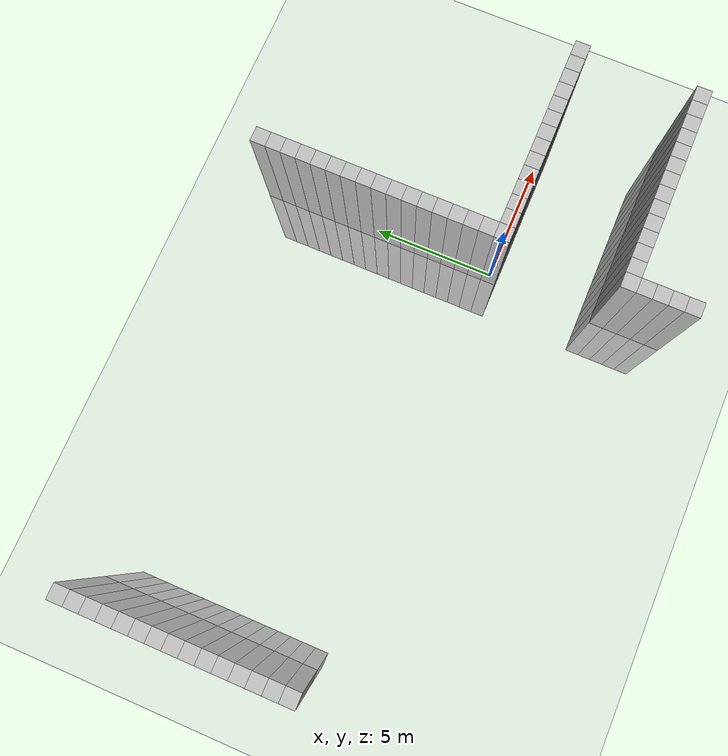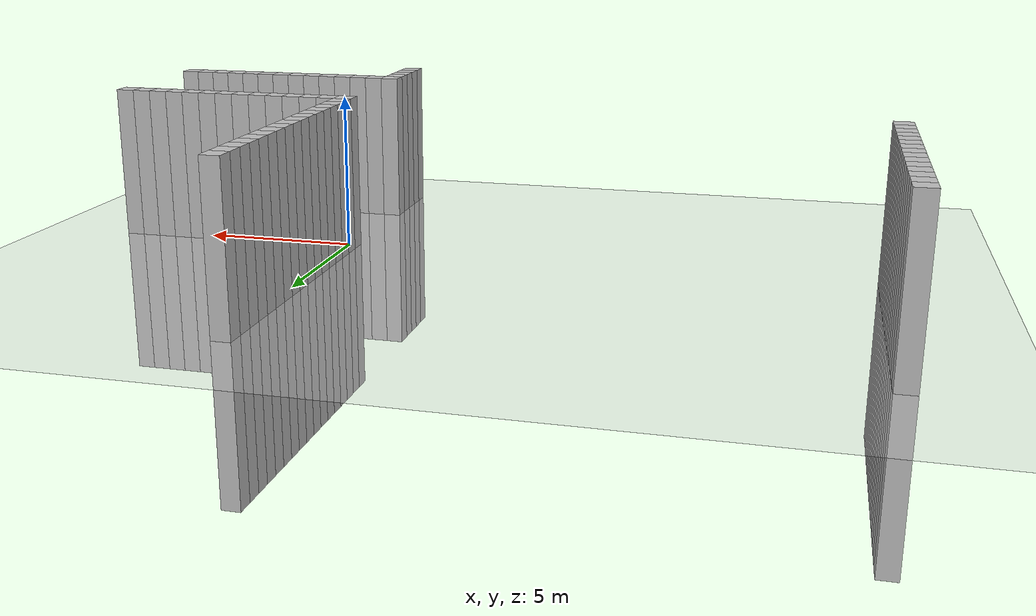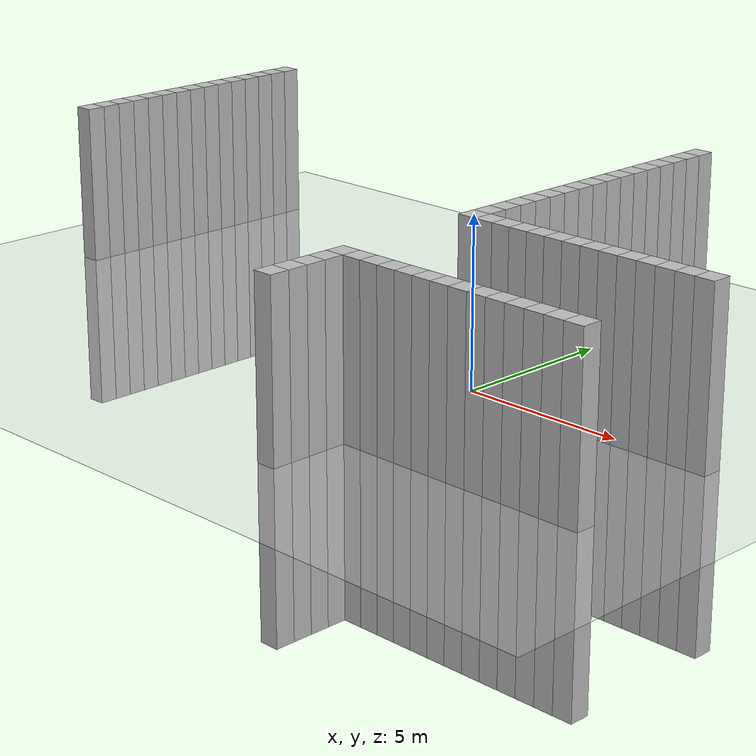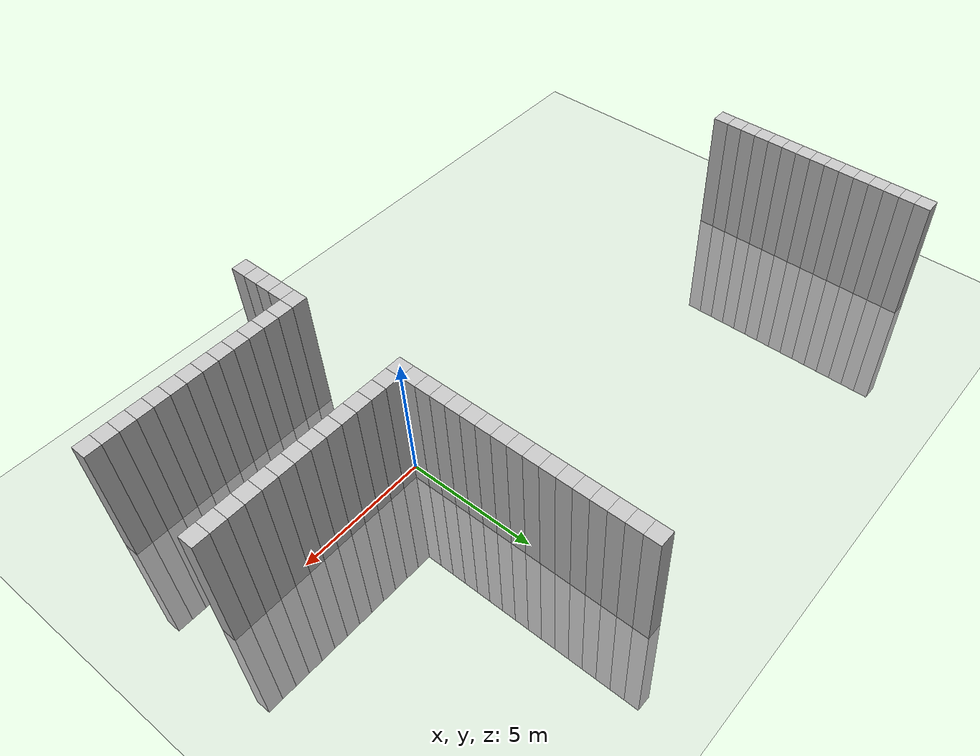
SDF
<sdf version="1.6">
 <world name="default">
  <model name="ground_plane">
   <static>1</static>
   <link name="link">
    <collision name="collision">
     <geometry><plane><normal>0 0 1</normal><size>100 100</size></plane></geometry>
     <surface><friction><ode><mu>100</mu><mu2>50</mu2></ode></friction></surface>
    </collision>
    <visual name="visual">
     <cast_shadows>0</cast_shadows>
     <geometry><plane><normal>0 0 1</normal><size>100 100</size></plane></geometry>
     <material>
      <script><uri>file://media/materials/scripts/gazebo.material</uri><name>Gazebo/Grey</name></script>
     </material>
    </visual>
   </link>
  </model>
  <model name="unit_cylinder_0">
   <static>1</static>
   <link name="link">
    <inertial>
     <mass>1</mass>
     <inertia><ixx>0.145833</ixx><ixy>0</ixy><ixz>0</ixz><iyy>0.145833</iyy><iyz>0</iyz><izz>0.125</izz></inertia>
    </inertial>
    <collision name="collision"><geometry><box><size>0.6 0.6 10</size></box></geometry></collision>
    <visual name="visual">
     <geometry><box><size>0.6 0.6 10</size></box></geometry>
     <material><ambient>0.753 0.753 0.753 1</ambient><diffuse>0.753 0.753 0.753 1</diffuse></material>
     <material>
      <script><name>Gazebo/Grey</name><uri>file://media/materials/scripts/gazebo.material</uri></script>
     </material>
    </visual>
   </link>
  </model>
  <model name="unit_cylinder_1">
   <static>1</static>
   <pose>0 0.6 0 0 -0 0</pose>
   <link name="link">
    <inertial>
     <mass>1</mass>
     <inertia><ixx>0.145833</ixx><ixy>0</ixy><ixz>0</ixz><iyy>0.145833</iyy><iyz>0</iyz><izz>0.125</izz></inertia>
    </inertial>
    <collision name="collision"><geometry><box><size>0.6 0.6 10</size></box></geometry></collision>
    <visual name="visual">
     <geometry><box><size>0.6 0.6 10</size></box></geometry>
     <material><ambient>0.753 0.753 0.753 1</ambient><diffuse>0.753 0.753 0.753 1</diffuse></material>
     <material>
      <script><name>Gazebo/Grey</name><uri>file://media/materials/scripts/gazebo.material</uri></script>
     </material>
    </visual>
   </link>
  </model>
  <model name="unit_cylinder_2">
   <static>1</static>
   <pose>0 1.2 0 0 -0 0</pose>
   <link name="link">
    <inertial>
     <mass>1</mass>
     <inertia><ixx>0.145833</ixx><ixy>0</ixy><ixz>0</ixz><iyy>0.145833</iyy><iyz>0</iyz><izz>0.125</izz></inertia>
    </inertial>
    <collision name="collision"><geometry><box><size>0.6 0.6 10</size></box></geometry></collision>
    <visual name="visual">
     <geometry><box><size>0.6 0.6 10</size></box></geometry>
     <material><ambient>0.753 0.753 0.753 1</ambient><diffuse>0.753 0.753 0.753 1</diffuse></material>
     <material>
      <script><name>Gazebo/Grey</name><uri>file://media/materials/scripts/gazebo.material</uri></script>
     </material>
    </visual>
   </link>
  </model>
  <model name="unit_cylinder_3">
   <static>1</static>
   <pose>0 1.8 0 0 -0 0</pose>
   <link name="link">
    <inertial>
     <mass>1</mass>
     <inertia><ixx>0.145833</ixx><ixy>0</ixy><ixz>0</ixz><iyy>0.145833</iyy><iyz>0</iyz><izz>0.125</izz></inertia>
    </inertial>
    <collision name="collision"><geometry><box><size>0.6 0.6 10</size></box></geometry></collision>
    <visual name="visual">
     <geometry><box><size>0.6 0.6 10</size></box></geometry>
     <material><ambient>0.753 0.753 0.753 1</ambient><diffuse>0.753 0.753 0.753 1</diffuse></material>
     <material>
      <script><name>Gazebo/Grey</name><uri>file://media/materials/scripts/gazebo.material</uri></script>
     </material>
    </visual>
   </link>
  </model>
  <model name="unit_cylinder_4">
   <static>1</static>
   <pose>0 2.4 0 0 -0 0</pose>
   <link name="link">
    <inertial>
     <mass>1</mass>
     <inertia><ixx>0.145833</ixx><ixy>0</ixy><ixz>0</ixz><iyy>0.145833</iyy><iyz>0</iyz><izz>0.125</izz></inertia>
    </inertial>
    <collision name="collision"><geometry><box><size>0.6 0.6 10</size></box></geometry></collision>
    <visual name="visual">
     <geometry><box><size>0.6 0.6 10</size></box></geometry>
     <material><ambient>0.753 0.753 0.753 1</ambient><diffuse>0.753 0.753 0.753 1</diffuse></material>
     <material>
      <script><name>Gazebo/Grey</name><uri>file://media/materials/scripts/gazebo.material</uri></script>
     </material>
    </visual>
   </link>
  </model>
  <model name="unit_cylinder_5">
   <static>1</static>
   <pose>0 3 0 0 -0 0</pose>
   <link name="link">
    <inertial>
     <mass>1</mass>
     <inertia><ixx>0.145833</ixx><ixy>0</ixy><ixz>0</ixz><iyy>0.145833</iyy><iyz>0</iyz><izz>0.125</izz></inertia>
    </inertial>
    <collision name="collision"><geometry><box><size>0.6 0.6 10</size></box></geometry></collision>
    <visual name="visual">
     <geometry><box><size>0.6 0.6 10</size></box></geometry>
     <material><ambient>0.753 0.753 0.753 1</ambient><diffuse>0.753 0.753 0.753 1</diffuse></material>
     <material>
      <script><name>Gazebo/Grey</name><uri>file://media/materials/scripts/gazebo.material</uri></script>
     </material>
    </visual>
   </link>
  </model>
  <model name="unit_cylinder_6">
   <static>1</static>
   <pose>0 3.6 0 0 -0 0</pose>
   <link name="link">
    <inertial>
     <mass>1</mass>
     <inertia><ixx>0.145833</ixx><ixy>0</ixy><ixz>0</ixz><iyy>0.145833</iyy><iyz>0</iyz><izz>0.125</izz></inertia>
    </inertial>
    <collision name="collision"><geometry><box><size>0.6 0.6 10</size></box></geometry></collision>
    <visual name="visual">
     <geometry><box><size>0.6 0.6 10</size></box></geometry>
     <material><ambient>0.753 0.753 0.753 1</ambient><diffuse>0.753 0.753 0.753 1</diffuse></material>
     <material>
      <script><name>Gazebo/Grey</name><uri>file://media/materials/scripts/gazebo.material</uri></script>
     </material>
    </visual>
   </link>
  </model>
  <model name="unit_cylinder_7">
   <static>1</static>
   <pose>0 4.2 0 0 -0 0</pose>
   <link name="link">
    <inertial>
     <mass>1</mass>
     <inertia><ixx>0.145833</ixx><ixy>0</ixy><ixz>0</ixz><iyy>0.145833</iyy><iyz>0</iyz><izz>0.125</izz></inertia>
    </inertial>
    <collision name="collision"><geometry><box><size>0.6 0.6 10</size></box></geometry></collision>
    <visual name="visual">
     <geometry><box><size>0.6 0.6 10</size></box></geometry>
     <material><ambient>0.753 0.753 0.753 1</ambient><diffuse>0.753 0.753 0.753 1</diffuse></material>
     <material>
      <script><name>Gazebo/Grey</name><uri>file://media/materials/scripts/gazebo.material</uri></script>
     </material>
    </visual>
   </link>
  </model>
  <model name="unit_cylinder_8">
   <static>1</static>
   <pose>0 4.8 0 0 -0 0</pose>
   <link name="link">
    <inertial>
     <mass>1</mass>
     <inertia><ixx>0.145833</ixx><ixy>0</ixy><ixz>0</ixz><iyy>0.145833</iyy><iyz>0</iyz><izz>0.125</izz></inertia>
    </inertial>
    <collision name="collision"><geometry><box><size>0.6 0.6 10</size></box></geometry></collision>
    <visual name="visual">
     <geometry><box><size>0.6 0.6 10</size></box></geometry>
     <material><ambient>0.753 0.753 0.753 1</ambient><diffuse>0.753 0.753 0.753 1</diffuse></material>
     <material>
      <script><name>Gazebo/Grey</name><uri>file://media/materials/scripts/gazebo.material</uri></script>
     </material>
    </visual>
   </link>
  </model>
  <model name="unit_cylinder_9">
   <static>1</static>
   <pose>0 5.4 0 0 -0 0</pose>
   <link name="link">
    <inertial>
     <mass>1</mass>
     <inertia><ixx>0.145833</ixx><ixy>0</ixy><ixz>0</ixz><iyy>0.145833</iyy><iyz>0</iyz><izz>0.125</izz></inertia>
    </inertial>
    <collision name="collision"><geometry><box><size>0.6 0.6 10</size></box></geometry></collision>
    <visual name="visual">
     <geometry><box><size>0.6 0.6 10</size></box></geometry>
     <material><ambient>0.753 0.753 0.753 1</ambient><diffuse>0.753 0.753 0.753 1</diffuse></material>
     <material>
      <script><name>Gazebo/Grey</name><uri>file://media/materials/scripts/gazebo.material</uri></script>
     </material>
    </visual>
   </link>
  </model>
  <model name="unit_cylinder_10">
   <static>1</static>
   <pose>0 6 0 0 -0 0</pose>
   <link name="link">
    <inertial>
     <mass>1</mass>
     <inertia><ixx>0.145833</ixx><ixy>0</ixy><ixz>0</ixz><iyy>0.145833</iyy><iyz>0</iyz><izz>0.125</izz></inertia>
    </inertial>
    <collision name="collision"><geometry><box><size>0.6 0.6 10</size></box></geometry></collision>
    <visual name="visual">
     <geometry><box><size>0.6 0.6 10</size></box></geometry>
     <material><ambient>0.753 0.753 0.753 1</ambient><diffuse>0.753 0.753 0.753 1</diffuse></material>
     <material>
      <script><name>Gazebo/Grey</name><uri>file://media/materials/scripts/gazebo.material</uri></script>
     </material>
    </visual>
   </link>
  </model>
  <model name="unit_cylinder_11">
   <static>1</static>
   <pose>0 6.6 0 0 -0 0</pose>
   <link name="link">
    <inertial>
     <mass>1</mass>
     <inertia><ixx>0.145833</ixx><ixy>0</ixy><ixz>0</ixz><iyy>0.145833</iyy><iyz>0</iyz><izz>0.125</izz></inertia>
    </inertial>
    <collision name="collision"><geometry><box><size>0.6 0.6 10</size></box></geometry></collision>
    <visual name="visual">
     <geometry><box><size>0.6 0.6 10</size></box></geometry>
     <material><ambient>0.753 0.753 0.753 1</ambient><diffuse>0.753 0.753 0.753 1</diffuse></material>
     <material>
      <script><name>Gazebo/Grey</name><uri>file://media/materials/scripts/gazebo.material</uri></script>
     </material>
    </visual>
   </link>
  </model>
  <model name="unit_cylinder_12">
   <static>1</static>
   <pose>0 7.2 0 0 -0 0</pose>
   <link name="link">
    <inertial>
     <mass>1</mass>
     <inertia><ixx>0.145833</ixx><ixy>0</ixy><ixz>0</ixz><iyy>0.145833</iyy><iyz>0</iyz><izz>0.125</izz></inertia>
    </inertial>
    <collision name="collision"><geometry><box><size>0.6 0.6 10</size></box></geometry></collision>
    <visual name="visual">
     <geometry><box><size>0.6 0.6 10</size></box></geometry>
     <material><ambient>0.753 0.753 0.753 1</ambient><diffuse>0.753 0.753 0.753 1</diffuse></material>
     <material>
      <script><name>Gazebo/Grey</name><uri>file://media/materials/scripts/gazebo.material</uri></script>
     </material>
    </visual>
   </link>
  </model>
  <model name="unit_cylinder_13">
   <static>1</static>
   <pose>0 7.8 0 0 -0 0</pose>
   <link name="link">
    <inertial>
     <mass>1</mass>
     <inertia><ixx>0.145833</ixx><ixy>0</ixy><ixz>0</ixz><iyy>0.145833</iyy><iyz>0</iyz><izz>0.125</izz></inertia>
    </inertial>
    <collision name="collision"><geometry><box><size>0.6 0.6 10</size></box></geometry></collision>
    <visual name="visual">
     <geometry><box><size>0.6 0.6 10</size></box></geometry>
     <material><ambient>0.753 0.753 0.753 1</ambient><diffuse>0.753 0.753 0.753 1</diffuse></material>
     <material>
      <script><name>Gazebo/Grey</name><uri>file://media/materials/scripts/gazebo.material</uri></script>
     </material>
    </visual>
   </link>
  </model>
  <model name="unit_cylinder_14">
   <static>1</static>
   <pose>0 8.4 0 0 -0 0</pose>
   <link name="link">
    <inertial>
     <mass>1</mass>
     <inertia><ixx>0.145833</ixx><ixy>0</ixy><ixz>0</ixz><iyy>0.145833</iyy><iyz>0</iyz><izz>0.125</izz></inertia>
    </inertial>
    <collision name="collision"><geometry><box><size>0.6 0.6 10</size></box></geometry></collision>
    <visual name="visual">
     <geometry><box><size>0.6 0.6 10</size></box></geometry>
     <material><ambient>0.753 0.753 0.753 1</ambient><diffuse>0.753 0.753 0.753 1</diffuse></material>
     <material>
      <script><name>Gazebo/Grey</name><uri>file://media/materials/scripts/gazebo.material</uri></script>
     </material>
    </visual>
   </link>
  </model>
  <model name="unit_cylinder_15">
   <static>1</static>
   <pose>0 9 0 0 -0 0</pose>
   <link name="link">
    <inertial>
     <mass>1</mass>
     <inertia><ixx>0.145833</ixx><ixy>0</ixy><ixz>0</ixz><iyy>0.145833</iyy><iyz>0</iyz><izz>0.125</izz></inertia>
    </inertial>
    <collision name="collision"><geometry><box><size>0.6 0.6 10</size></box></geometry></collision>
    <visual name="visual">
     <geometry><box><size>0.6 0.6 10</size></box></geometry>
     <material><ambient>0.753 0.753 0.753 1</ambient><diffuse>0.753 0.753 0.753 1</diffuse></material>
     <material>
      <script><name>Gazebo/Grey</name><uri>file://media/materials/scripts/gazebo.material</uri></script>
     </material>
    </visual>
   </link>
  </model>
  <model name="unit_cylinder_16">
   <static>1</static>
   <pose>0 9.6 0 0 -0 0</pose>
   <link name="link">
    <inertial>
     <mass>1</mass>
     <inertia><ixx>0.145833</ixx><ixy>0</ixy><ixz>0</ixz><iyy>0.145833</iyy><iyz>0</iyz><izz>0.125</izz></inertia>
    </inertial>
    <collision name="collision"><geometry><box><size>0.6 0.6 10</size></box></geometry></collision>
    <visual name="visual">
     <geometry><box><size>0.6 0.6 10</size></box></geometry>
     <material><ambient>0.753 0.753 0.753 1</ambient><diffuse>0.753 0.753 0.753 1</diffuse></material>
     <material>
      <script><name>Gazebo/Grey</name><uri>file://media/materials/scripts/gazebo.material</uri></script>
     </material>
    </visual>
   </link>
  </model>
  <model name="unit_cylinder_43">
   <static>1</static>
   <pose>0.6 0 0 0 -0 0</pose>
   <link name="link">
    <inertial>
     <mass>1</mass>
     <inertia><ixx>0.145833</ixx><ixy>0</ixy><ixz>0</ixz><iyy>0.145833</iyy><iyz>0</iyz><izz>0.125</izz></inertia>
    </inertial>
    <collision name="collision"><geometry><box><size>0.6 0.6 10</size></box></geometry></collision>
    <visual name="visual">
     <geometry><box><size>0.6 0.6 10</size></box></geometry>
     <material><ambient>0.753 0.753 0.753 1</ambient><diffuse>0.753 0.753 0.753 1</diffuse></material>
     <material>
      <script><name>Gazebo/Grey</name><uri>file://media/materials/scripts/gazebo.material</uri></script>
     </material>
    </visual>
   </link>
  </model>
  <model name="unit_cylinder_46">
   <static>1</static>
   <pose>1.2 0 0 0 -0 0</pose>
   <link name="link">
    <inertial>
     <mass>1</mass>
     <inertia><ixx>0.145833</ixx><ixy>0</ixy><ixz>0</ixz><iyy>0.145833</iyy><iyz>0</iyz><izz>0.125</izz></inertia>
    </inertial>
    <collision name="collision"><geometry><box><size>0.6 0.6 10</size></box></geometry></collision>
    <visual name="visual">
     <geometry><box><size>0.6 0.6 10</size></box></geometry>
     <material><ambient>0.753 0.753 0.753 1</ambient><diffuse>0.753 0.753 0.753 1</diffuse></material>
     <material>
      <script><name>Gazebo/Grey</name><uri>file://media/materials/scripts/gazebo.material</uri></script>
     </material>
    </visual>
   </link>
  </model>
  <model name="unit_cylinder_49">
   <static>1</static>
   <pose>1.8 0 0 0 -0 0</pose>
   <link name="link">
    <inertial>
     <mass>1</mass>
     <inertia><ixx>0.145833</ixx><ixy>0</ixy><ixz>0</ixz><iyy>0.145833</iyy><iyz>0</iyz><izz>0.125</izz></inertia>
    </inertial>
    <collision name="collision"><geometry><box><size>0.6 0.6 10</size></box></geometry></collision>
    <visual name="visual">
     <geometry><box><size>0.6 0.6 10</size></box></geometry>
     <material><ambient>0.753 0.753 0.753 1</ambient><diffuse>0.753 0.753 0.753 1</diffuse></material>
     <material>
      <script><name>Gazebo/Grey</name><uri>file://media/materials/scripts/gazebo.material</uri></script>
     </material>
    </visual>
   </link>
  </model>
  <model name="unit_cylinder_52">
   <static>1</static>
   <pose>2.4 0 0 0 -0 0</pose>
   <link name="link">
    <inertial>
     <mass>1</mass>
     <inertia><ixx>0.145833</ixx><ixy>0</ixy><ixz>0</ixz><iyy>0.145833</iyy><iyz>0</iyz><izz>0.125</izz></inertia>
    </inertial>
    <collision name="collision"><geometry><box><size>0.6 0.6 10</size></box></geometry></collision>
    <visual name="visual">
     <geometry><box><size>0.6 0.6 10</size></box></geometry>
     <material><ambient>0.753 0.753 0.753 1</ambient><diffuse>0.753 0.753 0.753 1</diffuse></material>
     <material>
      <script><name>Gazebo/Grey</name><uri>file://media/materials/scripts/gazebo.material</uri></script>
     </material>
    </visual>
   </link>
  </model>
  <model name="unit_cylinder_55">
   <static>1</static>
   <pose>3 0 0 0 -0 0</pose>
   <link name="link">
    <inertial>
     <mass>1</mass>
     <inertia><ixx>0.145833</ixx><ixy>0</ixy><ixz>0</ixz><iyy>0.145833</iyy><iyz>0</iyz><izz>0.125</izz></inertia>
    </inertial>
    <collision name="collision"><geometry><box><size>0.6 0.6 10</size></box></geometry></collision>
    <visual name="visual">
     <geometry><box><size>0.6 0.6 10</size></box></geometry>
     <material><ambient>0.753 0.753 0.753 1</ambient><diffuse>0.753 0.753 0.753 1</diffuse></material>
     <material>
      <script><name>Gazebo/Grey</name><uri>file://media/materials/scripts/gazebo.material</uri></script>
     </material>
    </visual>
   </link>
  </model>
  <model name="unit_cylinder_58">
   <static>1</static>
   <pose>3.6 0 0 0 -0 0</pose>
   <link name="link">
    <inertial>
     <mass>1</mass>
     <inertia><ixx>0.145833</ixx><ixy>0</ixy><ixz>0</ixz><iyy>0.145833</iyy><iyz>0</iyz><izz>0.125</izz></inertia>
    </inertial>
    <collision name="collision"><geometry><box><size>0.6 0.6 10</size></box></geometry></collision>
    <visual name="visual">
     <geometry><box><size>0.6 0.6 10</size></box></geometry>
     <material><ambient>0.753 0.753 0.753 1</ambient><diffuse>0.753 0.753 0.753 1</diffuse></material>
     <material>
      <script><name>Gazebo/Grey</name><uri>file://media/materials/scripts/gazebo.material</uri></script>
     </material>
    </visual>
   </link>
  </model>
  <model name="unit_cylinder_61">
   <static>1</static>
   <pose>4.2 0 0 0 -0 0</pose>
   <link name="link">
    <inertial>
     <mass>1</mass>
     <inertia><ixx>0.145833</ixx><ixy>0</ixy><ixz>0</ixz><iyy>0.145833</iyy><iyz>0</iyz><izz>0.125</izz></inertia>
    </inertial>
    <collision name="collision"><geometry><box><size>0.6 0.6 10</size></box></geometry></collision>
    <visual name="visual">
     <geometry><box><size>0.6 0.6 10</size></box></geometry>
     <material><ambient>0.753 0.753 0.753 1</ambient><diffuse>0.753 0.753 0.753 1</diffuse></material>
     <material>
      <script><name>Gazebo/Grey</name><uri>file://media/materials/scripts/gazebo.material</uri></script>
     </material>
    </visual>
   </link>
  </model>
  <model name="unit_cylinder_64">
   <static>1</static>
   <pose>4.8 0 0 0 -0 0</pose>
   <link name="link">
    <inertial>
     <mass>1</mass>
     <inertia><ixx>0.145833</ixx><ixy>0</ixy><ixz>0</ixz><iyy>0.145833</iyy><iyz>0</iyz><izz>0.125</izz></inertia>
    </inertial>
    <collision name="collision"><geometry><box><size>0.6 0.6 10</size></box></geometry></collision>
    <visual name="visual">
     <geometry><box><size>0.6 0.6 10</size></box></geometry>
     <material><ambient>0.753 0.753 0.753 1</ambient><diffuse>0.753 0.753 0.753 1</diffuse></material>
     <material>
      <script><name>Gazebo/Grey</name><uri>file://media/materials/scripts/gazebo.material</uri></script>
     </material>
    </visual>
   </link>
  </model>
  <model name="unit_cylinder_67">
   <static>1</static>
   <pose>5.4 0 0 0 -0 0</pose>
   <link name="link">
    <inertial>
     <mass>1</mass>
     <inertia><ixx>0.145833</ixx><ixy>0</ixy><ixz>0</ixz><iyy>0.145833</iyy><iyz>0</iyz><izz>0.125</izz></inertia>
    </inertial>
    <collision name="collision"><geometry><box><size>0.6 0.6 10</size></box></geometry></collision>
    <visual name="visual">
     <geometry><box><size>0.6 0.6 10</size></box></geometry>
     <material><ambient>0.753 0.753 0.753 1</ambient><diffuse>0.753 0.753 0.753 1</diffuse></material>
     <material>
      <script><name>Gazebo/Grey</name><uri>file://media/materials/scripts/gazebo.material</uri></script>
     </material>
    </visual>
   </link>
  </model>
  <model name="unit_cylinder_70">
   <static>1</static>
   <pose>6 0 0 0 -0 0</pose>
   <link name="link">
    <inertial>
     <mass>1</mass>
     <inertia><ixx>0.145833</ixx><ixy>0</ixy><ixz>0</ixz><iyy>0.145833</iyy><iyz>0</iyz><izz>0.125</izz></inertia>
    </inertial>
    <collision name="collision"><geometry><box><size>0.6 0.6 10</size></box></geometry></collision>
    <visual name="visual">
     <geometry><box><size>0.6 0.6 10</size></box></geometry>
     <material><ambient>0.753 0.753 0.753 1</ambient><diffuse>0.753 0.753 0.753 1</diffuse></material>
     <material>
      <script><name>Gazebo/Grey</name><uri>file://media/materials/scripts/gazebo.material</uri></script>
     </material>
    </visual>
   </link>
  </model>
  <model name="unit_cylinder_73">
   <static>1</static>
   <pose>6.6 0 0 0 -0 0</pose>
   <link name="link">
    <inertial>
     <mass>1</mass>
     <inertia><ixx>0.145833</ixx><ixy>0</ixy><ixz>0</ixz><iyy>0.145833</iyy><iyz>0</iyz><izz>0.125</izz></inertia>
    </inertial>
    <collision name="collision"><geometry><box><size>0.6 0.6 10</size></box></geometry></collision>
    <visual name="visual">
     <geometry><box><size>0.6 0.6 10</size></box></geometry>
     <material><ambient>0.753 0.753 0.753 1</ambient><diffuse>0.753 0.753 0.753 1</diffuse></material>
     <material>
      <script><name>Gazebo/Grey</name><uri>file://media/materials/scripts/gazebo.material</uri></script>
     </material>
    </visual>
   </link>
  </model>
  <model name="unit_cylinder_76">
   <static>1</static>
   <pose>7.2 0 0 0 -0 0</pose>
   <link name="link">
    <inertial>
     <mass>1</mass>
     <inertia><ixx>0.145833</ixx><ixy>0</ixy><ixz>0</ixz><iyy>0.145833</iyy><iyz>0</iyz><izz>0.125</izz></inertia>
    </inertial>
    <collision name="collision"><geometry><box><size>0.6 0.6 10</size></box></geometry></collision>
    <visual name="visual">
     <geometry><box><size>0.6 0.6 10</size></box></geometry>
     <material><ambient>0.753 0.753 0.753 1</ambient><diffuse>0.753 0.753 0.753 1</diffuse></material>
     <material>
      <script><name>Gazebo/Grey</name><uri>file://media/materials/scripts/gazebo.material</uri></script>
     </material>
    </visual>
   </link>
  </model>
  <model name="unit_cylinder_79">
   <static>1</static>
   <pose>7.8 0 0 0 -0 0</pose>
   <link name="link">
    <inertial>
     <mass>1</mass>
     <inertia><ixx>0.145833</ixx><ixy>0</ixy><ixz>0</ixz><iyy>0.145833</iyy><iyz>0</iyz><izz>0.125</izz></inertia>
    </inertial>
    <collision name="collision"><geometry><box><size>0.6 0.6 10</size></box></geometry></collision>
    <visual name="visual">
     <geometry><box><size>0.6 0.6 10</size></box></geometry>
     <material><ambient>0.753 0.753 0.753 1</ambient><diffuse>0.753 0.753 0.753 1</diffuse></material>
     <material>
      <script><name>Gazebo/Grey</name><uri>file://media/materials/scripts/gazebo.material</uri></script>
     </material>
    </visual>
   </link>
  </model>
  <model name="unit_cylinder_478">
   <static>1</static>
   <pose>-17.4 0.6 0 0 -0 0</pose>
   <link name="link">
    <inertial>
     <mass>1</mass>
     <inertia><ixx>0.145833</ixx><ixy>0</ixy><ixz>0</ixz><iyy>0.145833</iyy><iyz>0</iyz><izz>0.125</izz></inertia>
    </inertial>
    <collision name="collision"><geometry><box><size>0.6 0.6 10</size></box></geometry></collision>
    <visual name="visual">
     <geometry><box><size>0.6 0.6 10</size></box></geometry>
     <material><ambient>0.753 0.753 0.753 1</ambient><diffuse>0.753 0.753 0.753 1</diffuse></material>
     <material>
      <script><name>Gazebo/Grey</name><uri>file://media/materials/scripts/gazebo.material</uri></script>
     </material>
    </visual>
   </link>
  </model>
  <model name="unit_cylinder_479">
   <static>1</static>
   <pose>-17.4 1.2 0 0 -0 0</pose>
   <link name="link">
    <inertial>
     <mass>1</mass>
     <inertia><ixx>0.145833</ixx><ixy>0</ixy><ixz>0</ixz><iyy>0.145833</iyy><iyz>0</iyz><izz>0.125</izz></inertia>
    </inertial>
    <collision name="collision"><geometry><box><size>0.6 0.6 10</size></box></geometry></collision>
    <visual name="visual">
     <geometry><box><size>0.6 0.6 10</size></box></geometry>
     <material><ambient>0.753 0.753 0.753 1</ambient><diffuse>0.753 0.753 0.753 1</diffuse></material>
     <material>
      <script><name>Gazebo/Grey</name><uri>file://media/materials/scripts/gazebo.material</uri></script>
     </material>
    </visual>
   </link>
  </model>
  <model name="unit_cylinder_480">
   <static>1</static>
   <pose>-17.4 1.8 0 0 -0 0</pose>
   <link name="link">
    <inertial>
     <mass>1</mass>
     <inertia><ixx>0.145833</ixx><ixy>0</ixy><ixz>0</ixz><iyy>0.145833</iyy><iyz>0</iyz><izz>0.125</izz></inertia>
    </inertial>
    <collision name="collision"><geometry><box><size>0.6 0.6 10</size></box></geometry></collision>
    <visual name="visual">
     <geometry><box><size>0.6 0.6 10</size></box></geometry>
     <material><ambient>0.753 0.753 0.753 1</ambient><diffuse>0.753 0.753 0.753 1</diffuse></material>
     <material>
      <script><name>Gazebo/Grey</name><uri>file://media/materials/scripts/gazebo.material</uri></script>
     </material>
    </visual>
   </link>
  </model>
  <model name="unit_cylinder_481">
   <static>1</static>
   <pose>-17.4 2.4 0 0 -0 0</pose>
   <link name="link">
    <inertial>
     <mass>1</mass>
     <inertia><ixx>0.145833</ixx><ixy>0</ixy><ixz>0</ixz><iyy>0.145833</iyy><iyz>0</iyz><izz>0.125</izz></inertia>
    </inertial>
    <collision name="collision"><geometry><box><size>0.6 0.6 10</size></box></geometry></collision>
    <visual name="visual">
     <geometry><box><size>0.6 0.6 10</size></box></geometry>
     <material><ambient>0.753 0.753 0.753 1</ambient><diffuse>0.753 0.753 0.753 1</diffuse></material>
     <material>
      <script><name>Gazebo/Grey</name><uri>file://media/materials/scripts/gazebo.material</uri></script>
     </material>
    </visual>
   </link>
  </model>
  <model name="unit_cylinder_482">
   <static>1</static>
   <pose>-17.4 3 0 0 -0 0</pose>
   <link name="link">
    <inertial>
     <mass>1</mass>
     <inertia><ixx>0.145833</ixx><ixy>0</ixy><ixz>0</ixz><iyy>0.145833</iyy><iyz>0</iyz><izz>0.125</izz></inertia>
    </inertial>
    <collision name="collision"><geometry><box><size>0.6 0.6 10</size></box></geometry></collision>
    <visual name="visual">
     <geometry><box><size>0.6 0.6 10</size></box></geometry>
     <material><ambient>0.753 0.753 0.753 1</ambient><diffuse>0.753 0.753 0.753 1</diffuse></material>
     <material>
      <script><name>Gazebo/Grey</name><uri>file://media/materials/scripts/gazebo.material</uri></script>
     </material>
    </visual>
   </link>
  </model>
  <model name="unit_cylinder_483">
   <static>1</static>
   <pose>-17.4 3.6 0 0 -0 0</pose>
   <link name="link">
    <inertial>
     <mass>1</mass>
     <inertia><ixx>0.145833</ixx><ixy>0</ixy><ixz>0</ixz><iyy>0.145833</iyy><iyz>0</iyz><izz>0.125</izz></inertia>
    </inertial>
    <collision name="collision"><geometry><box><size>0.6 0.6 10</size></box></geometry></collision>
    <visual name="visual">
     <geometry><box><size>0.6 0.6 10</size></box></geometry>
     <material><ambient>0.753 0.753 0.753 1</ambient><diffuse>0.753 0.753 0.753 1</diffuse></material>
     <material>
      <script><name>Gazebo/Grey</name><uri>file://media/materials/scripts/gazebo.material</uri></script>
     </material>
    </visual>
   </link>
  </model>
  <model name="unit_cylinder_484">
   <static>1</static>
   <pose>-17.4 4.2 0 0 -0 0</pose>
   <link name="link">
    <inertial>
     <mass>1</mass>
     <inertia><ixx>0.145833</ixx><ixy>0</ixy><ixz>0</ixz><iyy>0.145833</iyy><iyz>0</iyz><izz>0.125</izz></inertia>
    </inertial>
    <collision name="collision"><geometry><box><size>0.6 0.6 10</size></box></geometry></collision>
    <visual name="visual">
     <geometry><box><size>0.6 0.6 10</size></box></geometry>
     <material><ambient>0.753 0.753 0.753 1</ambient><diffuse>0.753 0.753 0.753 1</diffuse></material>
     <material>
      <script><name>Gazebo/Grey</name><uri>file://media/materials/scripts/gazebo.material</uri></script>
     </material>
    </visual>
   </link>
  </model>
  <model name="unit_cylinder_485">
   <static>1</static>
   <pose>-17.4 4.8 0 0 -0 0</pose>
   <link name="link">
    <inertial>
     <mass>1</mass>
     <inertia><ixx>0.145833</ixx><ixy>0</ixy><ixz>0</ixz><iyy>0.145833</iyy><iyz>0</iyz><izz>0.125</izz></inertia>
    </inertial>
    <collision name="collision"><geometry><box><size>0.6 0.6 10</size></box></geometry></collision>
    <visual name="visual">
     <geometry><box><size>0.6 0.6 10</size></box></geometry>
     <material><ambient>0.753 0.753 0.753 1</ambient><diffuse>0.753 0.753 0.753 1</diffuse></material>
     <material>
      <script><name>Gazebo/Grey</name><uri>file://media/materials/scripts/gazebo.material</uri></script>
     </material>
    </visual>
   </link>
  </model>
  <model name="unit_cylinder_486">
   <static>1</static>
   <pose>-17.4 5.4 0 0 -0 0</pose>
   <link name="link">
    <inertial>
     <mass>1</mass>
     <inertia><ixx>0.145833</ixx><ixy>0</ixy><ixz>0</ixz><iyy>0.145833</iyy><iyz>0</iyz><izz>0.125</izz></inertia>
    </inertial>
    <collision name="collision"><geometry><box><size>0.6 0.6 10</size></box></geometry></collision>
    <visual name="visual">
     <geometry><box><size>0.6 0.6 10</size></box></geometry>
     <material><ambient>0.753 0.753 0.753 1</ambient><diffuse>0.753 0.753 0.753 1</diffuse></material>
     <material>
      <script><name>Gazebo/Grey</name><uri>file://media/materials/scripts/gazebo.material</uri></script>
     </material>
    </visual>
   </link>
  </model>
  <model name="unit_cylinder_487">
   <static>1</static>
   <pose>-17.4 6 0 0 -0 0</pose>
   <link name="link">
    <inertial>
     <mass>1</mass>
     <inertia><ixx>0.145833</ixx><ixy>0</ixy><ixz>0</ixz><iyy>0.145833</iyy><iyz>0</iyz><izz>0.125</izz></inertia>
    </inertial>
    <collision name="collision"><geometry><box><size>0.6 0.6 10</size></box></geometry></collision>
    <visual name="visual">
     <geometry><box><size>0.6 0.6 10</size></box></geometry>
     <material><ambient>0.753 0.753 0.753 1</ambient><diffuse>0.753 0.753 0.753 1</diffuse></material>
     <material>
      <script><name>Gazebo/Grey</name><uri>file://media/materials/scripts/gazebo.material</uri></script>
     </material>
    </visual>
   </link>
  </model>
  <model name="unit_cylinder_488">
   <static>1</static>
   <pose>-17.4 6.6 0 0 -0 0</pose>
   <link name="link">
    <inertial>
     <mass>1</mass>
     <inertia><ixx>0.145833</ixx><ixy>0</ixy><ixz>0</ixz><iyy>0.145833</iyy><iyz>0</iyz><izz>0.125</izz></inertia>
    </inertial>
    <collision name="collision"><geometry><box><size>0.6 0.6 10</size></box></geometry></collision>
    <visual name="visual">
     <geometry><box><size>0.6 0.6 10</size></box></geometry>
     <material><ambient>0.753 0.753 0.753 1</ambient><diffuse>0.753 0.753 0.753 1</diffuse></material>
     <material>
      <script><name>Gazebo/Grey</name><uri>file://media/materials/scripts/gazebo.material</uri></script>
     </material>
    </visual>
   </link>
  </model>
  <model name="unit_cylinder_489">
   <static>1</static>
   <pose>-17.4 7.2 0 0 -0 0</pose>
   <link name="link">
    <inertial>
     <mass>1</mass>
     <inertia><ixx>0.145833</ixx><ixy>0</ixy><ixz>0</ixz><iyy>0.145833</iyy><iyz>0</iyz><izz>0.125</izz></inertia>
    </inertial>
    <collision name="collision"><geometry><box><size>0.6 0.6 10</size></box></geometry></collision>
    <visual name="visual">
     <geometry><box><size>0.6 0.6 10</size></box></geometry>
     <material><ambient>0.753 0.753 0.753 1</ambient><diffuse>0.753 0.753 0.753 1</diffuse></material>
     <material>
      <script><name>Gazebo/Grey</name><uri>file://media/materials/scripts/gazebo.material</uri></script>
     </material>
    </visual>
   </link>
  </model>
  <model name="unit_cylinder_490">
   <static>1</static>
   <pose>-17.4 7.8 0 0 -0 0</pose>
   <link name="link">
    <inertial>
     <mass>1</mass>
     <inertia><ixx>0.145833</ixx><ixy>0</ixy><ixz>0</ixz><iyy>0.145833</iyy><iyz>0</iyz><izz>0.125</izz></inertia>
    </inertial>
    <collision name="collision"><geometry><box><size>0.6 0.6 10</size></box></geometry></collision>
    <visual name="visual">
     <geometry><box><size>0.6 0.6 10</size></box></geometry>
     <material><ambient>0.753 0.753 0.753 1</ambient><diffuse>0.753 0.753 0.753 1</diffuse></material>
     <material>
      <script><name>Gazebo/Grey</name><uri>file://media/materials/scripts/gazebo.material</uri></script>
     </material>
    </visual>
   </link>
  </model>
  <model name="unit_cylinder_491">
   <static>1</static>
   <pose>-17.4 8.4 0 0 -0 0</pose>
   <link name="link">
    <inertial>
     <mass>1</mass>
     <inertia><ixx>0.145833</ixx><ixy>0</ixy><ixz>0</ixz><iyy>0.145833</iyy><iyz>0</iyz><izz>0.125</izz></inertia>
    </inertial>
    <collision name="collision"><geometry><box><size>0.6 0.6 10</size></box></geometry></collision>
    <visual name="visual">
     <geometry><box><size>0.6 0.6 10</size></box></geometry>
     <material><ambient>0.753 0.753 0.753 1</ambient><diffuse>0.753 0.753 0.753 1</diffuse></material>
     <material>
      <script><name>Gazebo/Grey</name><uri>file://media/materials/scripts/gazebo.material</uri></script>
     </material>
    </visual>
   </link>
  </model>
  <model name="unit_cylinder_492">
   <static>1</static>
   <pose>-17.4 9 0 0 -0 0</pose>
   <link name="link">
    <inertial>
     <mass>1</mass>
     <inertia><ixx>0.145833</ixx><ixy>0</ixy><ixz>0</ixz><iyy>0.145833</iyy><iyz>0</iyz><izz>0.125</izz></inertia>
    </inertial>
    <collision name="collision"><geometry><box><size>0.6 0.6 10</size></box></geometry></collision>
    <visual name="visual">
     <geometry><box><size>0.6 0.6 10</size></box></geometry>
     <material><ambient>0.753 0.753 0.753 1</ambient><diffuse>0.753 0.753 0.753 1</diffuse></material>
     <material>
      <script><name>Gazebo/Grey</name><uri>file://media/materials/scripts/gazebo.material</uri></script>
     </material>
    </visual>
   </link>
  </model>
  <model name="unit_cylinder_725">
   <static>1</static>
   <pose>0 -7.2 0 0 -0 0</pose>
   <link name="link">
    <inertial>
     <mass>1</mass>
     <inertia><ixx>0.145833</ixx><ixy>0</ixy><ixz>0</ixz><iyy>0.145833</iyy><iyz>0</iyz><izz>0.125</izz></inertia>
    </inertial>
    <collision name="collision"><geometry><box><size>0.6 0.6 10</size></box></geometry></collision>
    <visual name="visual">
     <geometry><box><size>0.6 0.6 10</size></box></geometry>
     <material><ambient>0.753 0.753 0.753 1</ambient><diffuse>0.753 0.753 0.753 1</diffuse></material>
     <material>
      <script><name>Gazebo/Grey</name><uri>file://media/materials/scripts/gazebo.material</uri></script>
     </material>
    </visual>
   </link>
  </model>
  <model name="unit_cylinder_726">
   <static>1</static>
   <pose>0 -6.6 0 0 -0 0</pose>
   <link name="link">
    <inertial>
     <mass>1</mass>
     <inertia><ixx>0.145833</ixx><ixy>0</ixy><ixz>0</ixz><iyy>0.145833</iyy><iyz>0</iyz><izz>0.125</izz></inertia>
    </inertial>
    <collision name="collision"><geometry><box><size>0.6 0.6 10</size></box></geometry></collision>
    <visual name="visual">
     <geometry><box><size>0.6 0.6 10</size></box></geometry>
     <material><ambient>0.753 0.753 0.753 1</ambient><diffuse>0.753 0.753 0.753 1</diffuse></material>
     <material>
      <script><name>Gazebo/Grey</name><uri>file://media/materials/scripts/gazebo.material</uri></script>
     </material>
    </visual>
   </link>
  </model>
  <model name="unit_cylinder_727">
   <static>1</static>
   <pose>0 -6 0 0 -0 0</pose>
   <link name="link">
    <inertial>
     <mass>1</mass>
     <inertia><ixx>0.145833</ixx><ixy>0</ixy><ixz>0</ixz><iyy>0.145833</iyy><iyz>0</iyz><izz>0.125</izz></inertia>
    </inertial>
    <collision name="collision"><geometry><box><size>0.6 0.6 10</size></box></geometry></collision>
    <visual name="visual">
     <geometry><box><size>0.6 0.6 10</size></box></geometry>
     <material><ambient>0.753 0.753 0.753 1</ambient><diffuse>0.753 0.753 0.753 1</diffuse></material>
     <material>
      <script><name>Gazebo/Grey</name><uri>file://media/materials/scripts/gazebo.material</uri></script>
     </material>
    </visual>
   </link>
  </model>
  <model name="unit_cylinder_728">
   <static>1</static>
   <pose>0 -5.4 0 0 -0 0</pose>
   <link name="link">
    <inertial>
     <mass>1</mass>
     <inertia><ixx>0.145833</ixx><ixy>0</ixy><ixz>0</ixz><iyy>0.145833</iyy><iyz>0</iyz><izz>0.125</izz></inertia>
    </inertial>
    <collision name="collision"><geometry><box><size>0.6 0.6 10</size></box></geometry></collision>
    <visual name="visual">
     <geometry><box><size>0.6 0.6 10</size></box></geometry>
     <material><ambient>0.753 0.753 0.753 1</ambient><diffuse>0.753 0.753 0.753 1</diffuse></material>
     <material>
      <script><name>Gazebo/Grey</name><uri>file://media/materials/scripts/gazebo.material</uri></script>
     </material>
    </visual>
   </link>
  </model>
  <model name="unit_cylinder_729">
   <static>1</static>
   <pose>0 -4.8 0 0 -0 0</pose>
   <link name="link">
    <inertial>
     <mass>1</mass>
     <inertia><ixx>0.145833</ixx><ixy>0</ixy><ixz>0</ixz><iyy>0.145833</iyy><iyz>0</iyz><izz>0.125</izz></inertia>
    </inertial>
    <collision name="collision"><geometry><box><size>0.6 0.6 10</size></box></geometry></collision>
    <visual name="visual">
     <geometry><box><size>0.6 0.6 10</size></box></geometry>
     <material><ambient>0.753 0.753 0.753 1</ambient><diffuse>0.753 0.753 0.753 1</diffuse></material>
     <material>
      <script><name>Gazebo/Grey</name><uri>file://media/materials/scripts/gazebo.material</uri></script>
     </material>
    </visual>
   </link>
  </model>
  <model name="unit_cylinder_732">
   <static>1</static>
   <pose>0.6 -4.8 0 0 -0 0</pose>
   <link name="link">
    <inertial>
     <mass>1</mass>
     <inertia><ixx>0.145833</ixx><ixy>0</ixy><ixz>0</ixz><iyy>0.145833</iyy><iyz>0</iyz><izz>0.125</izz></inertia>
    </inertial>
    <collision name="collision"><geometry><box><size>0.6 0.6 10</size></box></geometry></collision>
    <visual name="visual">
     <geometry><box><size>0.6 0.6 10</size></box></geometry>
     <material><ambient>0.753 0.753 0.753 1</ambient><diffuse>0.753 0.753 0.753 1</diffuse></material>
     <material>
      <script><name>Gazebo/Grey</name><uri>file://media/materials/scripts/gazebo.material</uri></script>
     </material>
    </visual>
   </link>
  </model>
  <model name="unit_cylinder_735">
   <static>1</static>
   <pose>1.2 -4.8 0 0 -0 0</pose>
   <link name="link">
    <inertial>
     <mass>1</mass>
     <inertia><ixx>0.145833</ixx><ixy>0</ixy><ixz>0</ixz><iyy>0.145833</iyy><iyz>0</iyz><izz>0.125</izz></inertia>
    </inertial>
    <collision name="collision"><geometry><box><size>0.6 0.6 10</size></box></geometry></collision>
    <visual name="visual">
     <geometry><box><size>0.6 0.6 10</size></box></geometry>
     <material><ambient>0.753 0.753 0.753 1</ambient><diffuse>0.753 0.753 0.753 1</diffuse></material>
     <material>
      <script><name>Gazebo/Grey</name><uri>file://media/materials/scripts/gazebo.material</uri></script>
     </material>
    </visual>
   </link>
  </model>
  <model name="unit_cylinder_738">
   <static>1</static>
   <pose>1.8 -4.8 0 0 -0 0</pose>
   <link name="link">
    <inertial>
     <mass>1</mass>
     <inertia><ixx>0.145833</ixx><ixy>0</ixy><ixz>0</ixz><iyy>0.145833</iyy><iyz>0</iyz><izz>0.125</izz></inertia>
    </inertial>
    <collision name="collision"><geometry><box><size>0.6 0.6 10</size></box></geometry></collision>
    <visual name="visual">
     <geometry><box><size>0.6 0.6 10</size></box></geometry>
     <material><ambient>0.753 0.753 0.753 1</ambient><diffuse>0.753 0.753 0.753 1</diffuse></material>
     <material>
      <script><name>Gazebo/Grey</name><uri>file://media/materials/scripts/gazebo.material</uri></script>
     </material>
    </visual>
   </link>
  </model>
  <model name="unit_cylinder_741">
   <static>1</static>
   <pose>2.4 -4.8 0 0 -0 0</pose>
   <link name="link">
    <inertial>
     <mass>1</mass>
     <inertia><ixx>0.145833</ixx><ixy>0</ixy><ixz>0</ixz><iyy>0.145833</iyy><iyz>0</iyz><izz>0.125</izz></inertia>
    </inertial>
    <collision name="collision"><geometry><box><size>0.6 0.6 10</size></box></geometry></collision>
    <visual name="visual">
     <geometry><box><size>0.6 0.6 10</size></box></geometry>
     <material><ambient>0.753 0.753 0.753 1</ambient><diffuse>0.753 0.753 0.753 1</diffuse></material>
     <material>
      <script><name>Gazebo/Grey</name><uri>file://media/materials/scripts/gazebo.material</uri></script>
     </material>
    </visual>
   </link>
  </model>
  <model name="unit_cylinder_744">
   <static>1</static>
   <pose>3 -4.8 0 0 -0 0</pose>
   <link name="link">
    <inertial>
     <mass>1</mass>
     <inertia><ixx>0.145833</ixx><ixy>0</ixy><ixz>0</ixz><iyy>0.145833</iyy><iyz>0</iyz><izz>0.125</izz></inertia>
    </inertial>
    <collision name="collision"><geometry><box><size>0.6 0.6 10</size></box></geometry></collision>
    <visual name="visual">
     <geometry><box><size>0.6 0.6 10</size></box></geometry>
     <material><ambient>0.753 0.753 0.753 1</ambient><diffuse>0.753 0.753 0.753 1</diffuse></material>
     <material>
      <script><name>Gazebo/Grey</name><uri>file://media/materials/scripts/gazebo.material</uri></script>
     </material>
    </visual>
   </link>
  </model>
  <model name="unit_cylinder_747">
   <static>1</static>
   <pose>3.6 -4.8 0 0 -0 0</pose>
   <link name="link">
    <inertial>
     <mass>1</mass>
     <inertia><ixx>0.145833</ixx><ixy>0</ixy><ixz>0</ixz><iyy>0.145833</iyy><iyz>0</iyz><izz>0.125</izz></inertia>
    </inertial>
    <collision name="collision"><geometry><box><size>0.6 0.6 10</size></box></geometry></collision>
    <visual name="visual">
     <geometry><box><size>0.6 0.6 10</size></box></geometry>
     <material><ambient>0.753 0.753 0.753 1</ambient><diffuse>0.753 0.753 0.753 1</diffuse></material>
     <material>
      <script><name>Gazebo/Grey</name><uri>file://media/materials/scripts/gazebo.material</uri></script>
     </material>
    </visual>
   </link>
  </model>
  <model name="unit_cylinder_750">
   <static>1</static>
   <pose>4.2 -4.8 0 0 -0 0</pose>
   <link name="link">
    <inertial>
     <mass>1</mass>
     <inertia><ixx>0.145833</ixx><ixy>0</ixy><ixz>0</ixz><iyy>0.145833</iyy><iyz>0</iyz><izz>0.125</izz></inertia>
    </inertial>
    <collision name="collision"><geometry><box><size>0.6 0.6 10</size></box></geometry></collision>
    <visual name="visual">
     <geometry><box><size>0.6 0.6 10</size></box></geometry>
     <material><ambient>0.753 0.753 0.753 1</ambient><diffuse>0.753 0.753 0.753 1</diffuse></material>
     <material>
      <script><name>Gazebo/Grey</name><uri>file://media/materials/scripts/gazebo.material</uri></script>
     </material>
    </visual>
   </link>
  </model>
  <model name="unit_cylinder_753">
   <static>1</static>
   <pose>4.8 -4.8 0 0 -0 0</pose>
   <link name="link">
    <inertial>
     <mass>1</mass>
     <inertia><ixx>0.145833</ixx><ixy>0</ixy><ixz>0</ixz><iyy>0.145833</iyy><iyz>0</iyz><izz>0.125</izz></inertia>
    </inertial>
    <collision name="collision"><geometry><box><size>0.6 0.6 10</size></box></geometry></collision>
    <visual name="visual">
     <geometry><box><size>0.6 0.6 10</size></box></geometry>
     <material><ambient>0.753 0.753 0.753 1</ambient><diffuse>0.753 0.753 0.753 1</diffuse></material>
     <material>
      <script><name>Gazebo/Grey</name><uri>file://media/materials/scripts/gazebo.material</uri></script>
     </material>
    </visual>
   </link>
  </model>
  <model name="unit_cylinder_756">
   <static>1</static>
   <pose>5.4 -4.8 0 0 -0 0</pose>
   <link name="link">
    <inertial>
     <mass>1</mass>
     <inertia><ixx>0.145833</ixx><ixy>0</ixy><ixz>0</ixz><iyy>0.145833</iyy><iyz>0</iyz><izz>0.125</izz></inertia>
    </inertial>
    <collision name="collision"><geometry><box><size>0.6 0.6 10</size></box></geometry></collision>
    <visual name="visual">
     <geometry><box><size>0.6 0.6 10</size></box></geometry>
     <material><ambient>0.753 0.753 0.753 1</ambient><diffuse>0.753 0.753 0.753 1</diffuse></material>
     <material>
      <script><name>Gazebo/Grey</name><uri>file://media/materials/scripts/gazebo.material</uri></script>
     </material>
    </visual>
   </link>
  </model>
  <model name="unit_cylinder_759">
   <static>1</static>
   <pose>6 -4.8 0 0 -0 0</pose>
   <link name="link">
    <inertial>
     <mass>1</mass>
     <inertia><ixx>0.145833</ixx><ixy>0</ixy><ixz>0</ixz><iyy>0.145833</iyy><iyz>0</iyz><izz>0.125</izz></inertia>
    </inertial>
    <collision name="collision"><geometry><box><size>0.6 0.6 10</size></box></geometry></collision>
    <visual name="visual">
     <geometry><box><size>0.6 0.6 10</size></box></geometry>
     <material><ambient>0.753 0.753 0.753 1</ambient><diffuse>0.753 0.753 0.753 1</diffuse></material>
     <material>
      <script><name>Gazebo/Grey</name><uri>file://media/materials/scripts/gazebo.material</uri></script>
     </material>
    </visual>
   </link>
  </model>
  <model name="unit_cylinder_762">
   <static>1</static>
   <pose>6.6 -4.8 0 0 -0 0</pose>
   <link name="link">
    <inertial>
     <mass>1</mass>
     <inertia><ixx>0.145833</ixx><ixy>0</ixy><ixz>0</ixz><iyy>0.145833</iyy><iyz>0</iyz><izz>0.125</izz></inertia>
    </inertial>
    <collision name="collision"><geometry><box><size>0.6 0.6 10</size></box></geometry></collision>
    <visual name="visual">
     <geometry><box><size>0.6 0.6 10</size></box></geometry>
     <material><ambient>0.753 0.753 0.753 1</ambient><diffuse>0.753 0.753 0.753 1</diffuse></material>
     <material>
      <script><name>Gazebo/Grey</name><uri>file://media/materials/scripts/gazebo.material</uri></script>
     </material>
    </visual>
   </link>
  </model>
  <model name="unit_cylinder_765">
   <static>1</static>
   <pose>7.2 -4.8 0 0 -0 0</pose>
   <link name="link">
    <inertial>
     <mass>1</mass>
     <inertia><ixx>0.145833</ixx><ixy>0</ixy><ixz>0</ixz><iyy>0.145833</iyy><iyz>0</iyz><izz>0.125</izz></inertia>
    </inertial>
    <collision name="collision"><geometry><box><size>0.6 0.6 10</size></box></geometry></collision>
    <visual name="visual">
     <geometry><box><size>0.6 0.6 10</size></box></geometry>
     <material><ambient>0.753 0.753 0.753 1</ambient><diffuse>0.753 0.753 0.753 1</diffuse></material>
     <material>
      <script><name>Gazebo/Grey</name><uri>file://media/materials/scripts/gazebo.material</uri></script>
     </material>
    </visual>
   </link>
  </model>
  <model name="unit_cylinder_768">
   <static>1</static>
   <pose>7.8 -4.8 0 0 -0 0</pose>
   <link name="link">
    <inertial>
     <mass>1</mass>
     <inertia><ixx>0.145833</ixx><ixy>0</ixy><ixz>0</ixz><iyy>0.145833</iyy><iyz>0</iyz><izz>0.125</izz></inertia>
    </inertial>
    <collision name="collision"><geometry><box><size>0.6 0.6 10</size></box></geometry></collision>
    <visual name="visual">
     <geometry><box><size>0.6 0.6 10</size></box></geometry>
     <material><ambient>0.753 0.753 0.753 1</ambient><diffuse>0.753 0.753 0.753 1</diffuse></material>
     <material>
      <script><name>Gazebo/Grey</name><uri>file://media/materials/scripts/gazebo.material</uri></script>
     </material>
    </visual>
   </link>
  </model>
 </world>
</sdf>
